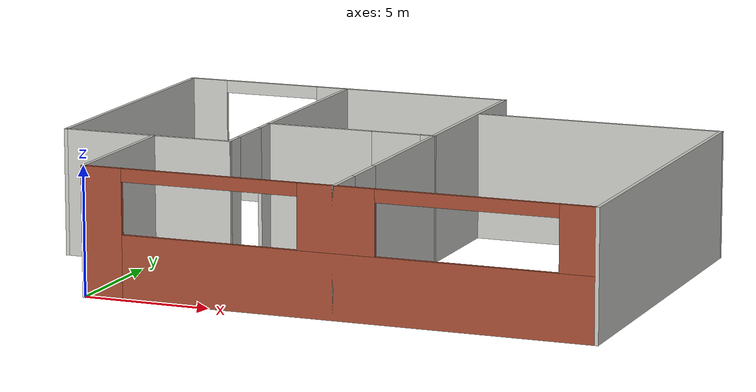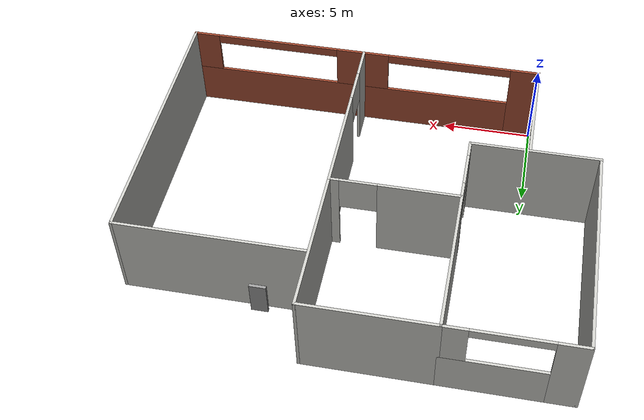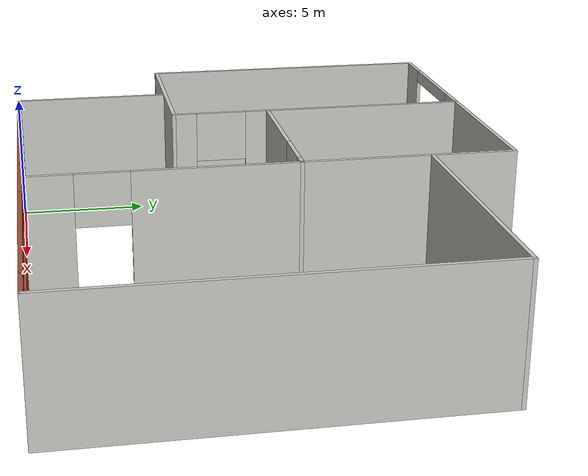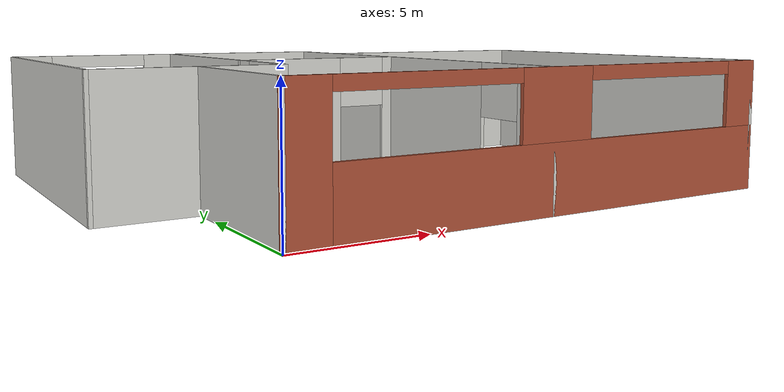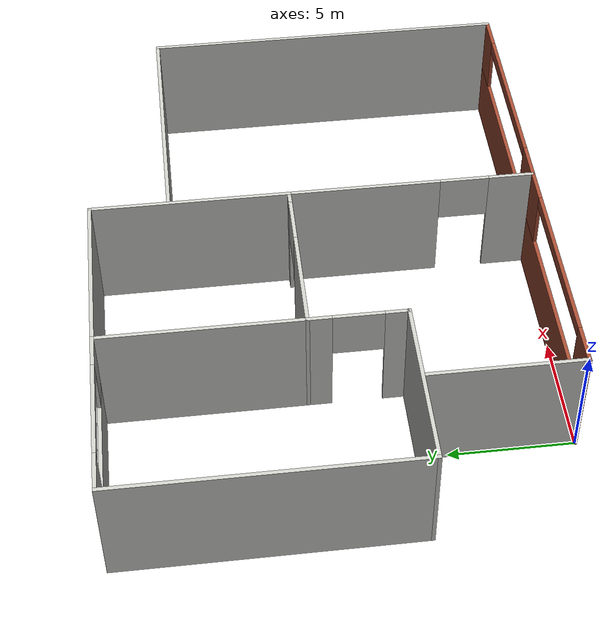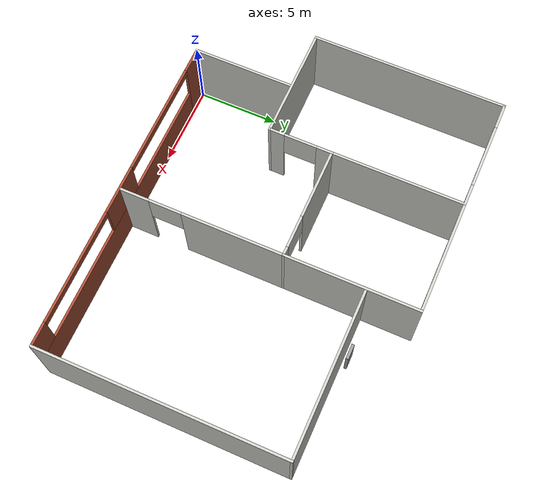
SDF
<?xml version='1.0'?>
<sdf version='1.6'>
  <model name='BotHome'>
    <pose frame=''>8.15 9 0 0 -0 0</pose>
    <link name='Door_0'>
      <collision name='Door_0_Collision'>
        <geometry>
          <box>
            <size>0.9 0.17 2</size>
          </box>
        </geometry>
        <pose frame=''>0 0 1 0 -0 0</pose>
      </collision>
      <visual name='Door_0_Visual'>
        <pose frame=''>0 0 1 0 -0 0</pose>
        <geometry>
          <box>
            <size>0.9 0.17 2</size>
          </box>
        </geometry>
        <material>
          <script>
            <uri>file://media/materials/scripts/gazebo.material</uri>
            <name>Gazebo/Grey</name>
          </script>
        </material>
      </visual>
      <pose frame=''>4.52809 6.21207 0 0 -0 0</pose>
    </link>
    <link name='Wall_11'>
      <pose frame=''>1.85 -4 0 0 -0 1.5708</pose>
      <visual name='Wall_11_Visual_0'>
        <pose frame=''>-4.12039 0 2.5 0 -0 0</pose>
        <geometry>
          <box>
            <size>1.90922 0.15 5</size>
          </box>
        </geometry>
        <material>
          <script>
            <uri>file://media/materials/scripts/gazebo.material</uri>
            <name>Gazebo/CeilingTiled</name>
          </script>
          <ambient>0.921569 0.807843 0.615686 1</ambient>
        </material>
        <meta>
          <layer>0</layer>
        </meta>
      </visual>
      <collision name='Wall_11_Collision_0'>
        <geometry>
          <box>
            <size>1.90922 0.15 5</size>
          </box>
        </geometry>
        <pose frame=''>-4.12039 0 2.5 0 -0 0</pose>
      </collision>
      <visual name='Wall_11_Visual_1'>
        <pose frame=''>1.95461 0 2.5 0 -0 0</pose>
        <geometry>
          <box>
            <size>6.24078 0.15 5</size>
          </box>
        </geometry>
        <material>
          <script>
            <uri>file://media/materials/scripts/gazebo.material</uri>
            <name>Gazebo/CeilingTiled</name>
          </script>
          <ambient>0.921569 0.807843 0.615686 1</ambient>
        </material>
        <meta>
          <layer>0</layer>
        </meta>
      </visual>
      <collision name='Wall_11_Collision_1'>
        <geometry>
          <box>
            <size>6.24078 0.15 5</size>
          </box>
        </geometry>
        <pose frame=''>1.95461 0 2.5 0 -0 0</pose>
      </collision>
      <visual name='Wall_11_Visual_2'>
        <pose frame=''>-2.16578 0 4 0 -0 0</pose>
        <geometry>
          <box>
            <size>2 0.15 2</size>
          </box>
        </geometry>
        <material>
          <script>
            <uri>file://media/materials/scripts/gazebo.material</uri>
            <name>Gazebo/CeilingTiled</name>
          </script>
          <ambient>0.921569 0.807843 0.615686 1</ambient>
        </material>
        <meta>
          <layer>0</layer>
        </meta>
      </visual>
      <collision name='Wall_11_Collision_2'>
        <geometry>
          <box>
            <size>2 0.15 2</size>
          </box>
        </geometry>
        <pose frame=''>-2.16578 0 4 0 -0 0</pose>
      </collision>
    </link>
    <link name='Wall_25'>
      <pose frame=''>-1.575 1 0 0 -0 3.14159</pose>
      <visual name='Wall_25_Visual_0'>
        <pose frame=''>-3.2031 0 2.5 0 -0 0</pose>
        <geometry>
          <box>
            <size>0.593804 0.15 5</size>
          </box>
        </geometry>
        <material>
          <script>
            <uri>file://media/materials/scripts/gazebo.material</uri>
            <name>Gazebo/CeilingTiled</name>
          </script>
          <ambient>0.921569 0.807843 0.615686 1</ambient>
        </material>
        <meta>
          <layer>0</layer>
        </meta>
      </visual>
      <collision name='Wall_25_Collision_0'>
        <geometry>
          <box>
            <size>0.593804 0.15 5</size>
          </box>
        </geometry>
        <pose frame=''>-3.2031 0 2.5 0 -0 0</pose>
      </collision>
      <visual name='Wall_25_Visual_1'>
        <pose frame=''>1.2969 0 2.5 0 -0 0</pose>
        <geometry>
          <box>
            <size>4.4062 0.15 5</size>
          </box>
        </geometry>
        <material>
          <script>
            <uri>file://media/materials/scripts/gazebo.material</uri>
            <name>Gazebo/CeilingTiled</name>
          </script>
          <ambient>0.921569 0.807843 0.615686 1</ambient>
        </material>
        <meta>
          <layer>0</layer>
        </meta>
      </visual>
      <collision name='Wall_25_Collision_1'>
        <geometry>
          <box>
            <size>4.4062 0.15 5</size>
          </box>
        </geometry>
        <pose frame=''>1.2969 0 2.5 0 -0 0</pose>
      </collision>
      <visual name='Wall_25_Visual_2'>
        <pose frame=''>-1.9062 0 4 0 -0 0</pose>
        <geometry>
          <box>
            <size>2 0.15 2</size>
          </box>
        </geometry>
        <material>
          <script>
            <uri>file://media/materials/scripts/gazebo.material</uri>
            <name>Gazebo/CeilingTiled</name>
          </script>
          <ambient>0.921569 0.807843 0.615686 1</ambient>
        </material>
        <meta>
          <layer>0</layer>
        </meta>
      </visual>
      <collision name='Wall_25_Collision_2'>
        <geometry>
          <box>
            <size>2 0.15 2</size>
          </box>
        </geometry>
        <pose frame=''>-1.9062 0 4 0 -0 0</pose>
      </collision>
    </link>
    <link name='Wall_27'>
      <pose frame=''>-5 -0.925 0 0 0 -1.5708</pose>
      <visual name='Wall_27_Visual_0'>
        <pose frame=''>-1.49609 0 2.5 0 -0 0</pose>
        <geometry>
          <box>
            <size>1.00781 0.15 5</size>
          </box>
        </geometry>
        <material>
          <script>
            <uri>file://media/materials/scripts/gazebo.material</uri>
            <name>Gazebo/CeilingTiled</name>
          </script>
          <ambient>0.921569 0.807843 0.615686 1</ambient>
        </material>
        <meta>
          <layer>0</layer>
        </meta>
      </visual>
      <collision name='Wall_27_Collision_0'>
        <geometry>
          <box>
            <size>1.00781 0.15 5</size>
          </box>
        </geometry>
        <pose frame=''>-1.49609 0 2.5 0 -0 0</pose>
      </collision>
      <visual name='Wall_27_Visual_1'>
        <pose frame=''>1.50391 0 2.5 0 -0 0</pose>
        <geometry>
          <box>
            <size>0.992188 0.15 5</size>
          </box>
        </geometry>
        <material>
          <script>
            <uri>file://media/materials/scripts/gazebo.material</uri>
            <name>Gazebo/CeilingTiled</name>
          </script>
          <ambient>0.921569 0.807843 0.615686 1</ambient>
        </material>
        <meta>
          <layer>0</layer>
        </meta>
      </visual>
      <collision name='Wall_27_Collision_1'>
        <geometry>
          <box>
            <size>0.992188 0.15 5</size>
          </box>
        </geometry>
        <pose frame=''>1.50391 0 2.5 0 -0 0</pose>
      </collision>
      <visual name='Wall_27_Visual_2'>
        <pose frame=''>0.007813 0 4 0 -0 0</pose>
        <geometry>
          <box>
            <size>2 0.15 2</size>
          </box>
        </geometry>
        <material>
          <script>
            <uri>file://media/materials/scripts/gazebo.material</uri>
            <name>Gazebo/CeilingTiled</name>
          </script>
          <ambient>0.921569 0.807843 0.615686 1</ambient>
        </material>
        <meta>
          <layer>0</layer>
        </meta>
      </visual>
      <collision name='Wall_27_Collision_2'>
        <geometry>
          <box>
            <size>2 0.15 2</size>
          </box>
        </geometry>
        <pose frame=''>0.007813 0 4 0 -0 0</pose>
      </collision>
    </link>
    <link name='Wall_29'>
      <collision name='Wall_29_Collision'>
        <geometry>
          <box>
            <size>7 0.15 5</size>
          </box>
        </geometry>
        <pose frame=''>0 0 2.5 0 -0 0</pose>
      </collision>
      <visual name='Wall_29_Visual'>
        <pose frame=''>0 0 2.5 0 -0 0</pose>
        <geometry>
          <box>
            <size>7 0.15 5</size>
          </box>
        </geometry>
        <material>
          <script>
            <uri>file://media/materials/scripts/gazebo.material</uri>
            <name>Gazebo/CeilingTiled</name>
          </script>
          <ambient>0.921569 0.807843 0.615686 1</ambient>
        </material>
        <meta>
          <layer>0</layer>
        </meta>
      </visual>
      <pose frame=''>-8.425 -2.85 0 0 -0 3.14159</pose>
    </link>
    <link name='Wall_31'>
      <collision name='Wall_31_Collision'>
        <geometry>
          <box>
            <size>6.15 0.15 5</size>
          </box>
        </geometry>
        <pose frame=''>0 0 2.5 0 -0 0</pose>
      </collision>
      <visual name='Wall_31_Visual'>
        <pose frame=''>0 0 2.5 0 -0 0</pose>
        <geometry>
          <box>
            <size>6.15 0.15 5</size>
          </box>
        </geometry>
        <material>
          <script>
            <uri>file://media/materials/scripts/gazebo.material</uri>
            <name>Gazebo/CeilingTiled</name>
          </script>
          <ambient>0.921569 0.807843 0.615686 1</ambient>
        </material>
        <meta>
          <layer>0</layer>
        </meta>
      </visual>
      <pose frame=''>-8.15 -6 0 0 -0 1.5708</pose>
    </link>
    <link name='Wall_33'>
      <collision name='Wall_33_Collision'>
        <geometry>
          <box>
            <size>12 0.15 5</size>
          </box>
        </geometry>
        <pose frame=''>0 0 2.5 0 -0 0</pose>
      </collision>
      <visual name='Wall_33_Visual'>
        <pose frame=''>0 0 2.5 0 -0 0</pose>
        <geometry>
          <box>
            <size>12 0.15 5</size>
          </box>
        </geometry>
        <material>
          <script>
            <uri>file://media/materials/scripts/gazebo.material</uri>
            <name>Gazebo/CeilingTiled</name>
          </script>
          <ambient>0.921569 0.807843 0.615686 1</ambient>
        </material>
        <meta>
          <layer>0</layer>
        </meta>
      </visual>
      <pose frame=''>-11.85 3.075 0 0 -0 1.5708</pose>
    </link>
    <link name='Wall_35'>
      <collision name='Wall_35_Collision'>
        <geometry>
          <box>
            <size>8 0.15 5</size>
          </box>
        </geometry>
        <pose frame=''>0 0 2.5 0 -0 0</pose>
      </collision>
      <visual name='Wall_35_Visual'>
        <pose frame=''>0 0 2.5 0 -0 0</pose>
        <geometry>
          <box>
            <size>8 0.15 5</size>
          </box>
        </geometry>
        <material>
          <script>
            <uri>file://media/materials/scripts/gazebo.material</uri>
            <name>Gazebo/CeilingTiled</name>
          </script>
          <ambient>0.921569 0.807843 0.615686 1</ambient>
        </material>
        <meta>
          <layer>0</layer>
        </meta>
      </visual>
      <pose frame=''>-5 4.925 0 0 -0 1.5708</pose>
    </link>
    <link name='Wall_37'>
      <pose frame=''>-8.425 9 0 0 -0 0</pose>
      <visual name='Wall_37_Visual_0'>
        <pose frame=''>-2.68249 0 2.5 0 -0 0</pose>
        <geometry>
          <box>
            <size>1.63502 0.15 5</size>
          </box>
        </geometry>
        <material>
          <script>
            <uri>file://media/materials/scripts/gazebo.material</uri>
            <name>Gazebo/CeilingTiled</name>
          </script>
          <ambient>0.921569 0.807843 0.615686 1</ambient>
        </material>
        <meta>
          <layer>0</layer>
        </meta>
      </visual>
      <collision name='Wall_37_Collision_0'>
        <geometry>
          <box>
            <size>1.63502 0.15 5</size>
          </box>
        </geometry>
        <pose frame=''>-2.68249 0 2.5 0 -0 0</pose>
      </collision>
      <visual name='Wall_37_Visual_1'>
        <pose frame=''>0.817508 0 1.25 0 -0 0</pose>
        <geometry>
          <box>
            <size>5.36498 0.15 2.5</size>
          </box>
        </geometry>
        <material>
          <script>
            <uri>file://media/materials/scripts/gazebo.material</uri>
            <name>Gazebo/CeilingTiled</name>
          </script>
          <ambient>0.921569 0.807843 0.615686 1</ambient>
        </material>
        <meta>
          <layer>0</layer>
        </meta>
      </visual>
      <collision name='Wall_37_Collision_1'>
        <geometry>
          <box>
            <size>5.36498 0.15 2.5</size>
          </box>
        </geometry>
        <pose frame=''>0.817508 0 1.25 0 -0 0</pose>
      </collision>
      <visual name='Wall_37_Visual_2'>
        <pose frame=''>2.81751 0 3.75 0 -0 0</pose>
        <geometry>
          <box>
            <size>1.36498 0.15 2.5</size>
          </box>
        </geometry>
        <material>
          <script>
            <uri>file://media/materials/scripts/gazebo.material</uri>
            <name>Gazebo/CeilingTiled</name>
          </script>
          <ambient>0.921569 0.807843 0.615686 1</ambient>
        </material>
        <meta>
          <layer>0</layer>
        </meta>
      </visual>
      <collision name='Wall_37_Collision_2'>
        <geometry>
          <box>
            <size>1.36498 0.15 2.5</size>
          </box>
        </geometry>
        <pose frame=''>2.81751 0 3.75 0 -0 0</pose>
      </collision>
      <visual name='Wall_37_Visual_3'>
        <pose frame=''>0.135017 0 4.75 0 -0 0</pose>
        <geometry>
          <box>
            <size>4 0.15 0.5</size>
          </box>
        </geometry>
        <material>
          <script>
            <uri>file://media/materials/scripts/gazebo.material</uri>
            <name>Gazebo/CeilingTiled</name>
          </script>
          <ambient>0.921569 0.807843 0.615686 1</ambient>
        </material>
        <meta>
          <layer>0</layer>
        </meta>
      </visual>
      <collision name='Wall_37_Collision_3'>
        <geometry>
          <box>
            <size>4 0.15 0.5</size>
          </box>
        </geometry>
        <pose frame=''>0.135017 0 4.75 0 -0 0</pose>
      </collision>
    </link>
    <link name='Wall_39'>
      <collision name='Wall_39_Collision'>
        <geometry>
          <box>
            <size>7 0.15 5</size>
          </box>
        </geometry>
        <pose frame=''>0 0 2.5 0 -0 0</pose>
      </collision>
      <visual name='Wall_39_Visual'>
        <pose frame=''>0 0 2.5 0 -0 0</pose>
        <geometry>
          <box>
            <size>7 0.15 5</size>
          </box>
        </geometry>
        <material>
          <script>
            <uri>file://media/materials/scripts/gazebo.material</uri>
            <name>Gazebo/CeilingTiled</name>
          </script>
          <ambient>0.921569 0.807843 0.615686 1</ambient>
        </material>
        <meta>
          <layer>0</layer>
        </meta>
      </visual>
      <pose frame=''>-1.575 9 0 0 -0 0</pose>
    </link>
    <link name='Wall_4'>
      <pose frame=''>1.85 -9 0 0 -0 0</pose>
      <visual name='Wall_4_Visual_0'>
        <pose frame=''>-9.25865 0 2.5 0 -0 0</pose>
        <geometry>
          <box>
            <size>1.63271 0.15 5</size>
          </box>
        </geometry>
        <material>
          <script>
            <uri>file://media/materials/scripts/gazebo.material</uri>
            <name>Gazebo/Bricks</name>
          </script>
          <ambient>0.921569 0.807843 0.615686 1</ambient>
        </material>
        <meta>
          <layer>0</layer>
        </meta>
      </visual>
      <collision name='Wall_4_Collision_0'>
        <geometry>
          <box>
            <size>1.63271 0.15 5</size>
          </box>
        </geometry>
        <pose frame=''>-9.25865 0 2.5 0 -0 0</pose>
      </collision>
      <visual name='Wall_4_Visual_1'>
        <pose frame=''>0.816354 0 1.25 0 -0 0</pose>
        <geometry>
          <box>
            <size>18.5173 0.15 2.5</size>
          </box>
        </geometry>
        <material>
          <script>
            <uri>file://media/materials/scripts/gazebo.material</uri>
            <name>Gazebo/Bricks</name>
          </script>
          <ambient>0.921569 0.807843 0.615686 1</ambient>
        </material>
        <meta>
          <layer>0</layer>
        </meta>
      </visual>
      <collision name='Wall_4_Collision_1'>
        <geometry>
          <box>
            <size>18.5173 0.15 2.5</size>
          </box>
        </geometry>
        <pose frame=''>0.816354 0 1.25 0 -0 0</pose>
      </collision>
      <visual name='Wall_4_Visual_2'>
        <pose frame=''>0.069766 0 3.75 0 -0 0</pose>
        <geometry>
          <box>
            <size>3.02412 0.15 2.5</size>
          </box>
        </geometry>
        <material>
          <script>
            <uri>file://media/materials/scripts/gazebo.material</uri>
            <name>Gazebo/Bricks</name>
          </script>
          <ambient>0.921569 0.807843 0.615686 1</ambient>
        </material>
        <meta>
          <layer>0</layer>
        </meta>
      </visual>
      <collision name='Wall_4_Collision_2'>
        <geometry>
          <box>
            <size>3.02412 0.15 2.5</size>
          </box>
        </geometry>
        <pose frame=''>0.069766 0 3.75 0 -0 0</pose>
      </collision>
      <visual name='Wall_4_Visual_3'>
        <pose frame=''>9.32841 0 3.75 0 -0 0</pose>
        <geometry>
          <box>
            <size>1.49318 0.15 2.5</size>
          </box>
        </geometry>
        <material>
          <script>
            <uri>file://media/materials/scripts/gazebo.material</uri>
            <name>Gazebo/Bricks</name>
          </script>
          <ambient>0.921569 0.807843 0.615686 1</ambient>
        </material>
        <meta>
          <layer>0</layer>
        </meta>
      </visual>
      <collision name='Wall_4_Collision_3'>
        <geometry>
          <box>
            <size>1.49318 0.15 2.5</size>
          </box>
        </geometry>
        <pose frame=''>9.32841 0 3.75 0 -0 0</pose>
      </collision>
      <visual name='Wall_4_Visual_4'>
        <pose frame=''>-4.94229 0 4.75 0 -0 0</pose>
        <geometry>
          <box>
            <size>7 0.15 0.5</size>
          </box>
        </geometry>
        <material>
          <script>
            <uri>file://media/materials/scripts/gazebo.material</uri>
            <name>Gazebo/Bricks</name>
          </script>
          <ambient>0.921569 0.807843 0.615686 1</ambient>
        </material>
        <meta>
          <layer>0</layer>
        </meta>
      </visual>
      <collision name='Wall_4_Collision_4'>
        <geometry>
          <box>
            <size>7 0.15 0.5</size>
          </box>
        </geometry>
        <pose frame=''>-4.94229 0 4.75 0 -0 0</pose>
      </collision>
      <visual name='Wall_4_Visual_5'>
        <pose frame=''>5.08182 0 4.75 0 -0 0</pose>
        <geometry>
          <box>
            <size>7 0.15 0.5</size>
          </box>
        </geometry>
        <material>
          <script>
            <uri>file://media/materials/scripts/gazebo.material</uri>
            <name>Gazebo/Bricks</name>
          </script>
          <ambient>0.921569 0.807843 0.615686 1</ambient>
        </material>
        <meta>
          <layer>0</layer>
        </meta>
      </visual>
      <collision name='Wall_4_Collision_5'>
        <geometry>
          <box>
            <size>7 0.15 0.5</size>
          </box>
        </geometry>
        <pose frame=''>5.08182 0 4.75 0 -0 0</pose>
      </collision>
    </link>
    <link name='Wall_42'>
      <collision name='Wall_42_Collision'>
        <geometry>
          <box>
            <size>8.15 0.15 5</size>
          </box>
        </geometry>
        <pose frame=''>0 0 2.5 0 -0 0</pose>
      </collision>
      <visual name='Wall_42_Visual'>
        <pose frame=''>0 0 2.5 0 -0 0</pose>
        <geometry>
          <box>
            <size>8.15 0.15 5</size>
          </box>
        </geometry>
        <material>
          <script>
            <uri>file://media/materials/scripts/gazebo.material</uri>
            <name>Gazebo/CeilingTiled</name>
          </script>
          <ambient>0.921569 0.807843 0.615686 1</ambient>
        </material>
        <meta>
          <layer>0</layer>
        </meta>
      </visual>
      <pose frame=''>1.85 5 0 0 0 -1.5708</pose>
    </link>
    <link name='Wall_6'>
      <collision name='Wall_6_Collision'>
        <geometry>
          <box>
            <size>15 0.15 5</size>
          </box>
        </geometry>
        <pose frame=''>0 0 2.5 0 -0 0</pose>
      </collision>
      <visual name='Wall_6_Visual'>
        <pose frame=''>0 0 2.5 0 -0 0</pose>
        <geometry>
          <box>
            <size>15 0.15 5</size>
          </box>
        </geometry>
        <material>
          <script>
            <uri>file://media/materials/scripts/gazebo.material</uri>
            <name>Gazebo/CeilingTiled</name>
          </script>
          <ambient>0.921569 0.807843 0.615686 1</ambient>
        </material>
        <meta>
          <layer>0</layer>
        </meta>
      </visual>
      <pose frame=''>11.85 -1.575 0 0 -0 1.5708</pose>
    </link>
    <link name='Wall_8'>
      <collision name='Wall_8_Collision'>
        <geometry>
          <box>
            <size>10 0.15 5</size>
          </box>
        </geometry>
        <pose frame=''>0 0 2.5 0 -0 0</pose>
      </collision>
      <visual name='Wall_8_Visual'>
        <pose frame=''>0 0 2.5 0 -0 0</pose>
        <geometry>
          <box>
            <size>10 0.15 5</size>
          </box>
        </geometry>
        <material>
          <script>
            <uri>file://media/materials/scripts/gazebo.material</uri>
            <name>Gazebo/CeilingTiled</name>
          </script>
          <ambient>0.921569 0.807843 0.615686 1</ambient>
        </material>
        <meta>
          <layer>0</layer>
        </meta>
      </visual>
      <pose frame=''>6.925 5.85 0 0 -0 3.14159</pose>
    </link>
    <static>1</static>
  </model>
</sdf>
